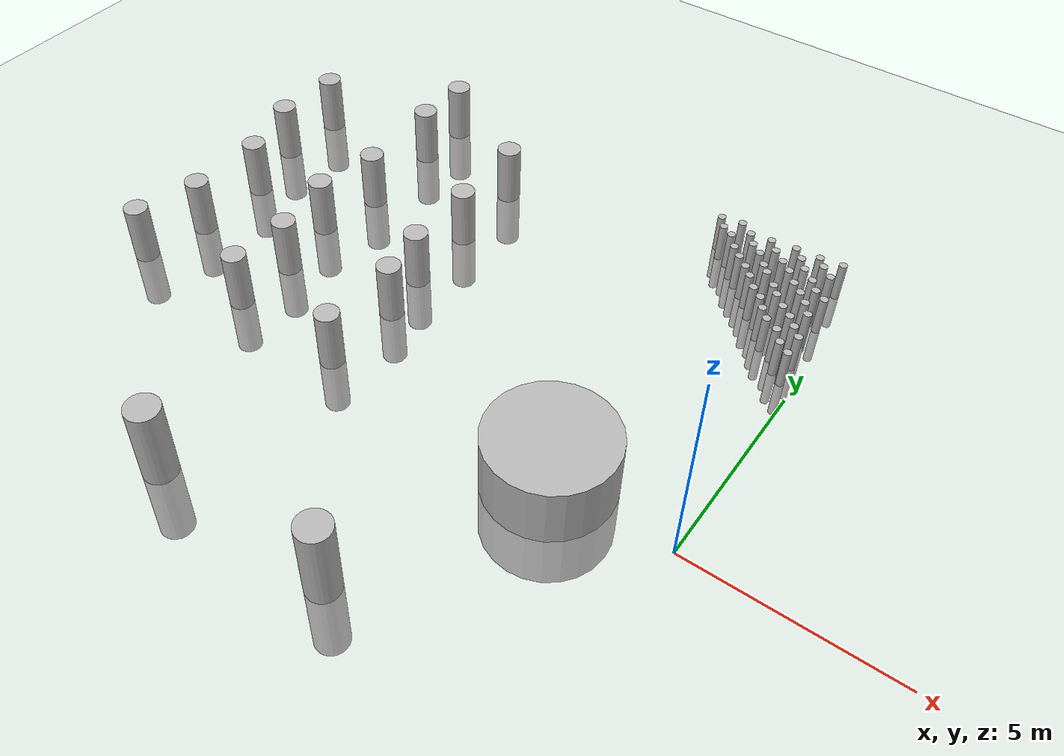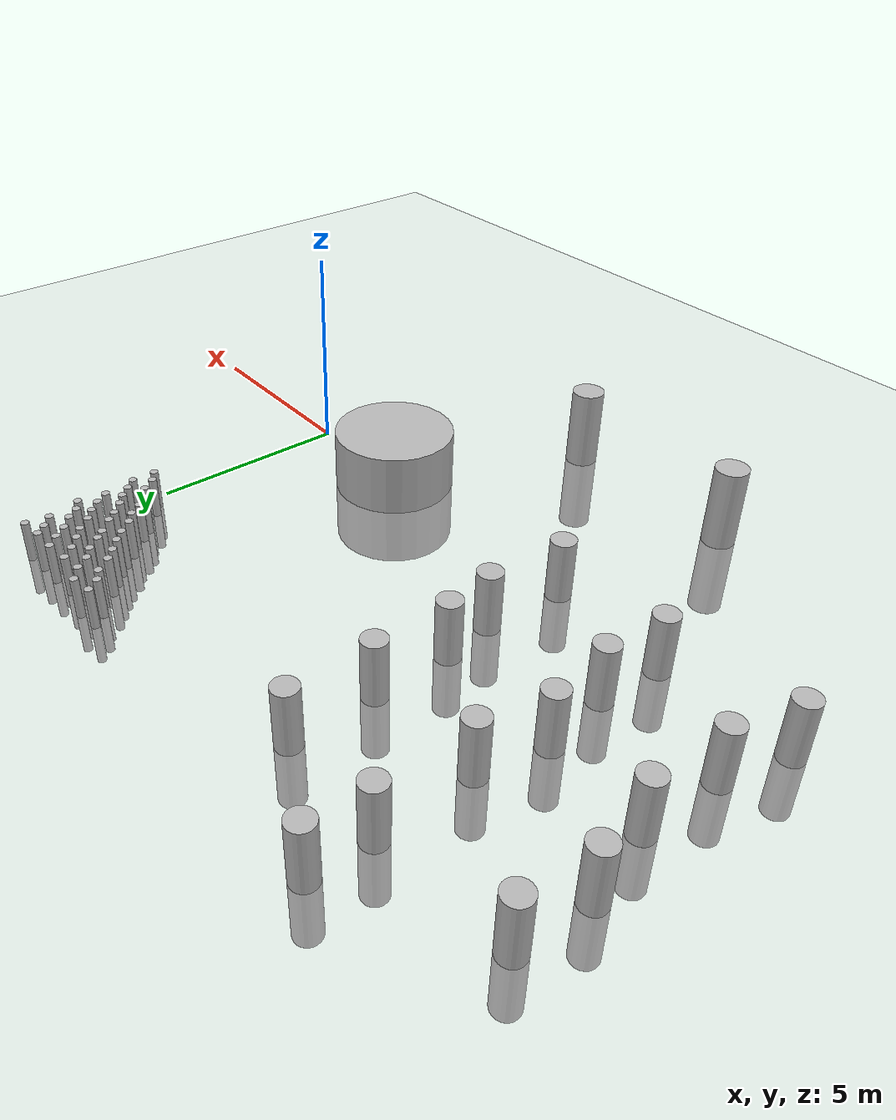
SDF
<sdf version="1.7">
 <world name="farmland_world">
  <model name="ground_plane">
   <static>1</static>
   <link name="link">
    <collision name="collision">
     <geometry><plane><normal>0 0 1</normal><size>40.0 40.0</size></plane></geometry>
     <surface><friction><ode><mu>100</mu><mu2>50</mu2></ode></friction></surface>
    </collision>
    <visual name="visual">
     <cast_shadows>0</cast_shadows>
     <geometry><plane><normal>0 0 1</normal><size>40.0 40.0</size></plane></geometry>
     <material>
      <script><uri>file://media/materials/scripts/gazebo.material</uri><name>Gazebo/Grey</name></script>
     </material>
    </visual>
   </link>
  </model>
  <model name="tree_0_5">
   <static>1</static>
   <link name="link">
    <collision name="collision">
     <geometry><cylinder><radius>0.3</radius><length>3.0</length></cylinder></geometry>
     <surface><friction><ode><mu>100</mu><mu2>50</mu2></ode></friction></surface>
    </collision>
    <visual name="visual">
     <geometry><cylinder><radius>0.3</radius><length>3.0</length></cylinder></geometry>
    </visual>
   </link>
   <pose>-15.098781797502422 6.998545656915446 0 0 0 0</pose>
  </model>
  <model name="tree_0_6">
   <static>1</static>
   <link name="link">
    <collision name="collision">
     <geometry><cylinder><radius>0.3</radius><length>3.0</length></cylinder></geometry>
     <surface><friction><ode><mu>100</mu><mu2>50</mu2></ode></friction></surface>
    </collision>
    <visual name="visual">
     <geometry><cylinder><radius>0.3</radius><length>3.0</length></cylinder></geometry>
    </visual>
   </link>
   <pose>-15.219759444484739 5.294043536451725 0 0 0 0</pose>
  </model>
  <model name="tree_0_7">
   <static>1</static>
   <link name="link">
    <collision name="collision">
     <geometry><cylinder><radius>0.3</radius><length>3.0</length></cylinder></geometry>
     <surface><friction><ode><mu>100</mu><mu2>50</mu2></ode></friction></surface>
    </collision>
    <visual name="visual">
     <geometry><cylinder><radius>0.3</radius><length>3.0</length></cylinder></geometry>
    </visual>
   </link>
   <pose>-14.733545784522109 3.598117998389355 0 0 0 0</pose>
  </model>
  <model name="tree_0_8">
   <static>1</static>
   <link name="link">
    <collision name="collision">
     <geometry><cylinder><radius>0.3</radius><length>3.0</length></cylinder></geometry>
     <surface><friction><ode><mu>100</mu><mu2>50</mu2></ode></friction></surface>
    </collision>
    <visual name="visual">
     <geometry><cylinder><radius>0.3</radius><length>3.0</length></cylinder></geometry>
    </visual>
   </link>
   <pose>-14.776917883909997 1.594553188719145 0 0 0 0</pose>
  </model>
  <model name="tree_0_9">
   <static>1</static>
   <link name="link">
    <collision name="collision">
     <geometry><cylinder><radius>0.3</radius><length>3.0</length></cylinder></geometry>
     <surface><friction><ode><mu>100</mu><mu2>50</mu2></ode></friction></surface>
    </collision>
    <visual name="visual">
     <geometry><cylinder><radius>0.3</radius><length>3.0</length></cylinder></geometry>
    </visual>
   </link>
   <pose>-15.20824132696946 -0.01747100562715229 0 0 0 0</pose>
  </model>
  <model name="tree_0_14">
   <static>1</static>
   <link name="link">
    <collision name="collision">
     <geometry><cylinder><radius>0.3</radius><length>3.0</length></cylinder></geometry>
     <surface><friction><ode><mu>100</mu><mu2>50</mu2></ode></friction></surface>
    </collision>
    <visual name="visual">
     <geometry><cylinder><radius>0.3</radius><length>3.0</length></cylinder></geometry>
    </visual>
   </link>
   <pose>-11.962250807036407 8.816510113504643 0 0 0 0</pose>
  </model>
  <model name="tree_0_15">
   <static>1</static>
   <link name="link">
    <collision name="collision">
     <geometry><cylinder><radius>0.3</radius><length>3.0</length></cylinder></geometry>
     <surface><friction><ode><mu>100</mu><mu2>50</mu2></ode></friction></surface>
    </collision>
    <visual name="visual">
     <geometry><cylinder><radius>0.3</radius><length>3.0</length></cylinder></geometry>
    </visual>
   </link>
   <pose>-12.01371350976454 7.388152698581483 0 0 0 0</pose>
  </model>
  <model name="tree_0_16">
   <static>1</static>
   <link name="link">
    <collision name="collision">
     <geometry><cylinder><radius>0.3</radius><length>3.0</length></cylinder></geometry>
     <surface><friction><ode><mu>100</mu><mu2>50</mu2></ode></friction></surface>
    </collision>
    <visual name="visual">
     <geometry><cylinder><radius>0.3</radius><length>3.0</length></cylinder></geometry>
    </visual>
   </link>
   <pose>-11.930365167949695 5.042977807746157 0 0 0 0</pose>
  </model>
  <model name="tree_0_17">
   <static>1</static>
   <link name="link">
    <collision name="collision">
     <geometry><cylinder><radius>0.3</radius><length>3.0</length></cylinder></geometry>
     <surface><friction><ode><mu>100</mu><mu2>50</mu2></ode></friction></surface>
    </collision>
    <visual name="visual">
     <geometry><cylinder><radius>0.3</radius><length>3.0</length></cylinder></geometry>
    </visual>
   </link>
   <pose>-12.270969702473527 3.4207295712960155 0 0 0 0</pose>
  </model>
  <model name="tree_0_18">
   <static>1</static>
   <link name="link">
    <collision name="collision">
     <geometry><cylinder><radius>0.3</radius><length>3.0</length></cylinder></geometry>
     <surface><friction><ode><mu>100</mu><mu2>50</mu2></ode></friction></surface>
    </collision>
    <visual name="visual">
     <geometry><cylinder><radius>0.3</radius><length>3.0</length></cylinder></geometry>
    </visual>
   </link>
   <pose>-11.960181825543396 1.7453268640379522 0 0 0 0</pose>
  </model>
  <model name="tree_0_19">
   <static>1</static>
   <link name="link">
    <collision name="collision">
     <geometry><cylinder><radius>0.3</radius><length>3.0</length></cylinder></geometry>
     <surface><friction><ode><mu>100</mu><mu2>50</mu2></ode></friction></surface>
    </collision>
    <visual name="visual">
     <geometry><cylinder><radius>0.3</radius><length>3.0</length></cylinder></geometry>
    </visual>
   </link>
   <pose>-12.06162498726729 0.15721724448994134 0 0 0 0</pose>
  </model>
  <model name="tree_0_25">
   <static>1</static>
   <link name="link">
    <collision name="collision">
     <geometry><cylinder><radius>0.3</radius><length>3.0</length></cylinder></geometry>
     <surface><friction><ode><mu>100</mu><mu2>50</mu2></ode></friction></surface>
    </collision>
    <visual name="visual">
     <geometry><cylinder><radius>0.3</radius><length>3.0</length></cylinder></geometry>
    </visual>
   </link>
   <pose>-9.207437022644298 7.32094262421926 0 0 0 0</pose>
  </model>
  <model name="tree_0_26">
   <static>1</static>
   <link name="link">
    <collision name="collision">
     <geometry><cylinder><radius>0.3</radius><length>3.0</length></cylinder></geometry>
     <surface><friction><ode><mu>100</mu><mu2>50</mu2></ode></friction></surface>
    </collision>
    <visual name="visual">
     <geometry><cylinder><radius>0.3</radius><length>3.0</length></cylinder></geometry>
    </visual>
   </link>
   <pose>-9.137057454465426 5.2215842788103615 0 0 0 0</pose>
  </model>
  <model name="tree_0_27">
   <static>1</static>
   <link name="link">
    <collision name="collision">
     <geometry><cylinder><radius>0.3</radius><length>3.0</length></cylinder></geometry>
     <surface><friction><ode><mu>100</mu><mu2>50</mu2></ode></friction></surface>
    </collision>
    <visual name="visual">
     <geometry><cylinder><radius>0.3</radius><length>3.0</length></cylinder></geometry>
    </visual>
   </link>
   <pose>-9.101786406746458 3.2916410255700908 0 0 0 0</pose>
  </model>
  <model name="tree_0_28">
   <static>1</static>
   <link name="link">
    <collision name="collision">
     <geometry><cylinder><radius>0.3</radius><length>3.0</length></cylinder></geometry>
     <surface><friction><ode><mu>100</mu><mu2>50</mu2></ode></friction></surface>
    </collision>
    <visual name="visual">
     <geometry><cylinder><radius>0.3</radius><length>3.0</length></cylinder></geometry>
    </visual>
   </link>
   <pose>-8.885857975989145 2.0078663709371467 0 0 0 0</pose>
  </model>
  <model name="tree_0_29">
   <static>1</static>
   <link name="link">
    <collision name="collision">
     <geometry><cylinder><radius>0.3</radius><length>3.0</length></cylinder></geometry>
     <surface><friction><ode><mu>100</mu><mu2>50</mu2></ode></friction></surface>
    </collision>
    <visual name="visual">
     <geometry><cylinder><radius>0.3</radius><length>3.0</length></cylinder></geometry>
    </visual>
   </link>
   <pose>-8.997880628791322 -0.02085265697098013 0 0 0 0</pose>
  </model>
  <model name="tree_1_9">
   <static>1</static>
   <link name="link">
    <collision name="collision">
     <geometry><cylinder><radius>0.4</radius><length>4.0</length></cylinder></geometry>
     <surface><friction><ode><mu>100</mu><mu2>50</mu2></ode></friction></surface>
    </collision>
    <visual name="visual">
     <geometry><cylinder><radius>0.4</radius><length>4.0</length></cylinder></geometry>
    </visual>
   </link>
   <pose>-5.135497637638166 -4.682200219394235 0 0 0 1.5707963267948966</pose>
  </model>
  <model name="tree_1_10">
   <static>1</static>
   <link name="link">
    <collision name="collision">
     <geometry><cylinder><radius>0.4</radius><length>4.0</length></cylinder></geometry>
     <surface><friction><ode><mu>100</mu><mu2>50</mu2></ode></friction></surface>
    </collision>
    <visual name="visual">
     <geometry><cylinder><radius>0.4</radius><length>4.0</length></cylinder></geometry>
    </visual>
   </link>
   <pose>-9.802835628621317 -4.581949401209085 0 0 0 1.5707963267948966</pose>
  </model>
  <model name="tree_2_21">
   <static>1</static>
   <link name="link">
    <collision name="collision">
     <geometry><cylinder><radius>0.1</radius><length>2.0</length></cylinder></geometry>
     <surface><friction><ode><mu>100</mu><mu2>50</mu2></ode></friction></surface>
    </collision>
    <visual name="visual">
     <geometry><cylinder><radius>0.1</radius><length>2.0</length></cylinder></geometry>
    </visual>
   </link>
   <pose>-0.3380930768440633 5.413363845217107 0 0 0 0</pose>
  </model>
  <model name="tree_2_22">
   <static>1</static>
   <link name="link">
    <collision name="collision">
     <geometry><cylinder><radius>0.1</radius><length>2.0</length></cylinder></geometry>
     <surface><friction><ode><mu>100</mu><mu2>50</mu2></ode></friction></surface>
    </collision>
    <visual name="visual">
     <geometry><cylinder><radius>0.1</radius><length>2.0</length></cylinder></geometry>
    </visual>
   </link>
   <pose>-0.6308501948283547 5.613641408759859 0 0 0 0</pose>
  </model>
  <model name="tree_2_23">
   <static>1</static>
   <link name="link">
    <collision name="collision">
     <geometry><cylinder><radius>0.1</radius><length>2.0</length></cylinder></geometry>
     <surface><friction><ode><mu>100</mu><mu2>50</mu2></ode></friction></surface>
    </collision>
    <visual name="visual">
     <geometry><cylinder><radius>0.1</radius><length>2.0</length></cylinder></geometry>
    </visual>
   </link>
   <pose>-0.8606125800667233 5.940997844809474 0 0 0 0</pose>
  </model>
  <model name="tree_2_24">
   <static>1</static>
   <link name="link">
    <collision name="collision">
     <geometry><cylinder><radius>0.1</radius><length>2.0</length></cylinder></geometry>
     <surface><friction><ode><mu>100</mu><mu2>50</mu2></ode></friction></surface>
    </collision>
    <visual name="visual">
     <geometry><cylinder><radius>0.1</radius><length>2.0</length></cylinder></geometry>
    </visual>
   </link>
   <pose>-1.1990766277143885 6.117519542541731 0 0 0 0</pose>
  </model>
  <model name="tree_2_25">
   <static>1</static>
   <link name="link">
    <collision name="collision">
     <geometry><cylinder><radius>0.1</radius><length>2.0</length></cylinder></geometry>
     <surface><friction><ode><mu>100</mu><mu2>50</mu2></ode></friction></surface>
    </collision>
    <visual name="visual">
     <geometry><cylinder><radius>0.1</radius><length>2.0</length></cylinder></geometry>
    </visual>
   </link>
   <pose>-1.4319952802808769 6.373526858822664 0 0 0 0</pose>
  </model>
  <model name="tree_2_26">
   <static>1</static>
   <link name="link">
    <collision name="collision">
     <geometry><cylinder><radius>0.1</radius><length>2.0</length></cylinder></geometry>
     <surface><friction><ode><mu>100</mu><mu2>50</mu2></ode></friction></surface>
    </collision>
    <visual name="visual">
     <geometry><cylinder><radius>0.1</radius><length>2.0</length></cylinder></geometry>
    </visual>
   </link>
   <pose>-1.6357539070695113 6.6738122246795415 0 0 0 0</pose>
  </model>
  <model name="tree_2_27">
   <static>1</static>
   <link name="link">
    <collision name="collision">
     <geometry><cylinder><radius>0.1</radius><length>2.0</length></cylinder></geometry>
     <surface><friction><ode><mu>100</mu><mu2>50</mu2></ode></friction></surface>
    </collision>
    <visual name="visual">
     <geometry><cylinder><radius>0.1</radius><length>2.0</length></cylinder></geometry>
    </visual>
   </link>
   <pose>-1.9115493747707457 6.877505857578395 0 0 0 0</pose>
  </model>
  <model name="tree_2_28">
   <static>1</static>
   <link name="link">
    <collision name="collision">
     <geometry><cylinder><radius>0.1</radius><length>2.0</length></cylinder></geometry>
     <surface><friction><ode><mu>100</mu><mu2>50</mu2></ode></friction></surface>
    </collision>
    <visual name="visual">
     <geometry><cylinder><radius>0.1</radius><length>2.0</length></cylinder></geometry>
    </visual>
   </link>
   <pose>-2.16747960339168 7.194308886205107 0 0 0 0</pose>
  </model>
  <model name="tree_2_29">
   <static>1</static>
   <link name="link">
    <collision name="collision">
     <geometry><cylinder><radius>0.1</radius><length>2.0</length></cylinder></geometry>
     <surface><friction><ode><mu>100</mu><mu2>50</mu2></ode></friction></surface>
    </collision>
    <visual name="visual">
     <geometry><cylinder><radius>0.1</radius><length>2.0</length></cylinder></geometry>
    </visual>
   </link>
   <pose>-2.401397207681057 7.429341261368056 0 0 0 0</pose>
  </model>
  <model name="tree_2_30">
   <static>1</static>
   <link name="link">
    <collision name="collision">
     <geometry><cylinder><radius>0.1</radius><length>2.0</length></cylinder></geometry>
     <surface><friction><ode><mu>100</mu><mu2>50</mu2></ode></friction></surface>
    </collision>
    <visual name="visual">
     <geometry><cylinder><radius>0.1</radius><length>2.0</length></cylinder></geometry>
    </visual>
   </link>
   <pose>-2.681686270731107 7.6684556228825125 0 0 0 0</pose>
  </model>
  <model name="tree_2_31">
   <static>1</static>
   <link name="link">
    <collision name="collision">
     <geometry><cylinder><radius>0.1</radius><length>2.0</length></cylinder></geometry>
     <surface><friction><ode><mu>100</mu><mu2>50</mu2></ode></friction></surface>
    </collision>
    <visual name="visual">
     <geometry><cylinder><radius>0.1</radius><length>2.0</length></cylinder></geometry>
    </visual>
   </link>
   <pose>-2.9390069384897344 7.900311566085868 0 0 0 0</pose>
  </model>
  <model name="tree_2_32">
   <static>1</static>
   <link name="link">
    <collision name="collision">
     <geometry><cylinder><radius>0.1</radius><length>2.0</length></cylinder></geometry>
     <surface><friction><ode><mu>100</mu><mu2>50</mu2></ode></friction></surface>
    </collision>
    <visual name="visual">
     <geometry><cylinder><radius>0.1</radius><length>2.0</length></cylinder></geometry>
    </visual>
   </link>
   <pose>-3.2029138018662326 8.25327488530289 0 0 0 0</pose>
  </model>
  <model name="tree_2_33">
   <static>1</static>
   <link name="link">
    <collision name="collision">
     <geometry><cylinder><radius>0.1</radius><length>2.0</length></cylinder></geometry>
     <surface><friction><ode><mu>100</mu><mu2>50</mu2></ode></friction></surface>
    </collision>
    <visual name="visual">
     <geometry><cylinder><radius>0.1</radius><length>2.0</length></cylinder></geometry>
    </visual>
   </link>
   <pose>-3.4969850516267558 8.420819120683626 0 0 0 0</pose>
  </model>
  <model name="tree_2_34">
   <static>1</static>
   <link name="link">
    <collision name="collision">
     <geometry><cylinder><radius>0.1</radius><length>2.0</length></cylinder></geometry>
     <surface><friction><ode><mu>100</mu><mu2>50</mu2></ode></friction></surface>
    </collision>
    <visual name="visual">
     <geometry><cylinder><radius>0.1</radius><length>2.0</length></cylinder></geometry>
    </visual>
   </link>
   <pose>-3.705072923717054 8.718561729445666 0 0 0 0</pose>
  </model>
  <model name="tree_2_65">
   <static>1</static>
   <link name="link">
    <collision name="collision">
     <geometry><cylinder><radius>0.1</radius><length>2.0</length></cylinder></geometry>
     <surface><friction><ode><mu>100</mu><mu2>50</mu2></ode></friction></surface>
    </collision>
    <visual name="visual">
     <geometry><cylinder><radius>0.1</radius><length>2.0</length></cylinder></geometry>
    </visual>
   </link>
   <pose>-0.4034332831278257 7.457722940546857 0 0 0 0</pose>
  </model>
  <model name="tree_2_66">
   <static>1</static>
   <link name="link">
    <collision name="collision">
     <geometry><cylinder><radius>0.1</radius><length>2.0</length></cylinder></geometry>
     <surface><friction><ode><mu>100</mu><mu2>50</mu2></ode></friction></surface>
    </collision>
    <visual name="visual">
     <geometry><cylinder><radius>0.1</radius><length>2.0</length></cylinder></geometry>
    </visual>
   </link>
   <pose>-0.6880758908677799 7.626650763925618 0 0 0 0</pose>
  </model>
  <model name="tree_2_67">
   <static>1</static>
   <link name="link">
    <collision name="collision">
     <geometry><cylinder><radius>0.1</radius><length>2.0</length></cylinder></geometry>
     <surface><friction><ode><mu>100</mu><mu2>50</mu2></ode></friction></surface>
    </collision>
    <visual name="visual">
     <geometry><cylinder><radius>0.1</radius><length>2.0</length></cylinder></geometry>
    </visual>
   </link>
   <pose>-0.9008226973823115 7.901959352281067 0 0 0 0</pose>
  </model>
  <model name="tree_2_68">
   <static>1</static>
   <link name="link">
    <collision name="collision">
     <geometry><cylinder><radius>0.1</radius><length>2.0</length></cylinder></geometry>
     <surface><friction><ode><mu>100</mu><mu2>50</mu2></ode></friction></surface>
    </collision>
    <visual name="visual">
     <geometry><cylinder><radius>0.1</radius><length>2.0</length></cylinder></geometry>
    </visual>
   </link>
   <pose>-1.2176097372176249 8.162854197464215 0 0 0 0</pose>
  </model>
  <model name="tree_2_69">
   <static>1</static>
   <link name="link">
    <collision name="collision">
     <geometry><cylinder><radius>0.1</radius><length>2.0</length></cylinder></geometry>
     <surface><friction><ode><mu>100</mu><mu2>50</mu2></ode></friction></surface>
    </collision>
    <visual name="visual">
     <geometry><cylinder><radius>0.1</radius><length>2.0</length></cylinder></geometry>
    </visual>
   </link>
   <pose>-1.4364615645850844 8.456999814794168 0 0 0 0</pose>
  </model>
  <model name="tree_2_70">
   <static>1</static>
   <link name="link">
    <collision name="collision">
     <geometry><cylinder><radius>0.1</radius><length>2.0</length></cylinder></geometry>
     <surface><friction><ode><mu>100</mu><mu2>50</mu2></ode></friction></surface>
    </collision>
    <visual name="visual">
     <geometry><cylinder><radius>0.1</radius><length>2.0</length></cylinder></geometry>
    </visual>
   </link>
   <pose>-1.6929391517453054 8.719845676866694 0 0 0 0</pose>
  </model>
  <model name="tree_2_262">
   <static>1</static>
   <link name="link">
    <collision name="collision">
     <geometry><cylinder><radius>0.1</radius><length>2.0</length></cylinder></geometry>
     <surface><friction><ode><mu>100</mu><mu2>50</mu2></ode></friction></surface>
    </collision>
    <visual name="visual">
     <geometry><cylinder><radius>0.1</radius><length>2.0</length></cylinder></geometry>
    </visual>
   </link>
   <pose>-0.3540876097628173 6.000607170319307 0 0 0 0</pose>
  </model>
  <model name="tree_2_263">
   <static>1</static>
   <link name="link">
    <collision name="collision">
     <geometry><cylinder><radius>0.1</radius><length>2.0</length></cylinder></geometry>
     <surface><friction><ode><mu>100</mu><mu2>50</mu2></ode></friction></surface>
    </collision>
    <visual name="visual">
     <geometry><cylinder><radius>0.1</radius><length>2.0</length></cylinder></geometry>
    </visual>
   </link>
   <pose>-0.582678577754594 6.250059491655997 0 0 0 0</pose>
  </model>
  <model name="tree_2_264">
   <static>1</static>
   <link name="link">
    <collision name="collision">
     <geometry><cylinder><radius>0.1</radius><length>2.0</length></cylinder></geometry>
     <surface><friction><ode><mu>100</mu><mu2>50</mu2></ode></friction></surface>
    </collision>
    <visual name="visual">
     <geometry><cylinder><radius>0.1</radius><length>2.0</length></cylinder></geometry>
    </visual>
   </link>
   <pose>-0.8074927238751258 6.502699005313393 0 0 0 0</pose>
  </model>
  <model name="tree_2_265">
   <static>1</static>
   <link name="link">
    <collision name="collision">
     <geometry><cylinder><radius>0.1</radius><length>2.0</length></cylinder></geometry>
     <surface><friction><ode><mu>100</mu><mu2>50</mu2></ode></friction></surface>
    </collision>
    <visual name="visual">
     <geometry><cylinder><radius>0.1</radius><length>2.0</length></cylinder></geometry>
    </visual>
   </link>
   <pose>-1.0792225168632963 6.703704157908853 0 0 0 0</pose>
  </model>
  <model name="tree_2_266">
   <static>1</static>
   <link name="link">
    <collision name="collision">
     <geometry><cylinder><radius>0.1</radius><length>2.0</length></cylinder></geometry>
     <surface><friction><ode><mu>100</mu><mu2>50</mu2></ode></friction></surface>
    </collision>
    <visual name="visual">
     <geometry><cylinder><radius>0.1</radius><length>2.0</length></cylinder></geometry>
    </visual>
   </link>
   <pose>-1.3680659460460571 6.985501055936378 0 0 0 0</pose>
  </model>
  <model name="tree_2_267">
   <static>1</static>
   <link name="link">
    <collision name="collision">
     <geometry><cylinder><radius>0.1</radius><length>2.0</length></cylinder></geometry>
     <surface><friction><ode><mu>100</mu><mu2>50</mu2></ode></friction></surface>
    </collision>
    <visual name="visual">
     <geometry><cylinder><radius>0.1</radius><length>2.0</length></cylinder></geometry>
    </visual>
   </link>
   <pose>-1.5634563626492135 7.215378041733001 0 0 0 0</pose>
  </model>
  <model name="tree_2_268">
   <static>1</static>
   <link name="link">
    <collision name="collision">
     <geometry><cylinder><radius>0.1</radius><length>2.0</length></cylinder></geometry>
     <surface><friction><ode><mu>100</mu><mu2>50</mu2></ode></friction></surface>
    </collision>
    <visual name="visual">
     <geometry><cylinder><radius>0.1</radius><length>2.0</length></cylinder></geometry>
    </visual>
   </link>
   <pose>-1.8952502208786681 7.544414949862732 0 0 0 0</pose>
  </model>
  <model name="tree_2_269">
   <static>1</static>
   <link name="link">
    <collision name="collision">
     <geometry><cylinder><radius>0.1</radius><length>2.0</length></cylinder></geometry>
     <surface><friction><ode><mu>100</mu><mu2>50</mu2></ode></friction></surface>
    </collision>
    <visual name="visual">
     <geometry><cylinder><radius>0.1</radius><length>2.0</length></cylinder></geometry>
    </visual>
   </link>
   <pose>-2.0702722834789102 7.7339407434945695 0 0 0 0</pose>
  </model>
  <model name="tree_2_270">
   <static>1</static>
   <link name="link">
    <collision name="collision">
     <geometry><cylinder><radius>0.1</radius><length>2.0</length></cylinder></geometry>
     <surface><friction><ode><mu>100</mu><mu2>50</mu2></ode></friction></surface>
    </collision>
    <visual name="visual">
     <geometry><cylinder><radius>0.1</radius><length>2.0</length></cylinder></geometry>
    </visual>
   </link>
   <pose>-2.332072769580689 8.050993955666309 0 0 0 0</pose>
  </model>
  <model name="tree_2_271">
   <static>1</static>
   <link name="link">
    <collision name="collision">
     <geometry><cylinder><radius>0.1</radius><length>2.0</length></cylinder></geometry>
     <surface><friction><ode><mu>100</mu><mu2>50</mu2></ode></friction></surface>
    </collision>
    <visual name="visual">
     <geometry><cylinder><radius>0.1</radius><length>2.0</length></cylinder></geometry>
    </visual>
   </link>
   <pose>-2.6178414408598085 8.257863083867091 0 0 0 0</pose>
  </model>
  <model name="tree_2_272">
   <static>1</static>
   <link name="link">
    <collision name="collision">
     <geometry><cylinder><radius>0.1</radius><length>2.0</length></cylinder></geometry>
     <surface><friction><ode><mu>100</mu><mu2>50</mu2></ode></friction></surface>
    </collision>
    <visual name="visual">
     <geometry><cylinder><radius>0.1</radius><length>2.0</length></cylinder></geometry>
    </visual>
   </link>
   <pose>-2.8300208009116266 8.564715462363427 0 0 0 0</pose>
  </model>
  <model name="tree_2_273">
   <static>1</static>
   <link name="link">
    <collision name="collision">
     <geometry><cylinder><radius>0.1</radius><length>2.0</length></cylinder></geometry>
     <surface><friction><ode><mu>100</mu><mu2>50</mu2></ode></friction></surface>
    </collision>
    <visual name="visual">
     <geometry><cylinder><radius>0.1</radius><length>2.0</length></cylinder></geometry>
    </visual>
   </link>
   <pose>-3.179990827298191 8.80808720733399 0 0 0 0</pose>
  </model>
  <model name="tree_2_304">
   <static>1</static>
   <link name="link">
    <collision name="collision">
     <geometry><cylinder><radius>0.1</radius><length>2.0</length></cylinder></geometry>
     <surface><friction><ode><mu>100</mu><mu2>50</mu2></ode></friction></surface>
    </collision>
    <visual name="visual">
     <geometry><cylinder><radius>0.1</radius><length>2.0</length></cylinder></geometry>
    </visual>
   </link>
   <pose>-0.5019286721721606 6.789084350449344 0 0 0 0</pose>
  </model>
  <model name="tree_2_305">
   <static>1</static>
   <link name="link">
    <collision name="collision">
     <geometry><cylinder><radius>0.1</radius><length>2.0</length></cylinder></geometry>
     <surface><friction><ode><mu>100</mu><mu2>50</mu2></ode></friction></surface>
    </collision>
    <visual name="visual">
     <geometry><cylinder><radius>0.1</radius><length>2.0</length></cylinder></geometry>
    </visual>
   </link>
   <pose>-0.708716528444992 7.103533227743999 0 0 0 0</pose>
  </model>
  <model name="tree_2_306">
   <static>1</static>
   <link name="link">
    <collision name="collision">
     <geometry><cylinder><radius>0.1</radius><length>2.0</length></cylinder></geometry>
     <surface><friction><ode><mu>100</mu><mu2>50</mu2></ode></friction></surface>
    </collision>
    <visual name="visual">
     <geometry><cylinder><radius>0.1</radius><length>2.0</length></cylinder></geometry>
    </visual>
   </link>
   <pose>-0.952253284587891 7.359232079692627 0 0 0 0</pose>
  </model>
  <model name="tree_2_307">
   <static>1</static>
   <link name="link">
    <collision name="collision">
     <geometry><cylinder><radius>0.1</radius><length>2.0</length></cylinder></geometry>
     <surface><friction><ode><mu>100</mu><mu2>50</mu2></ode></friction></surface>
    </collision>
    <visual name="visual">
     <geometry><cylinder><radius>0.1</radius><length>2.0</length></cylinder></geometry>
    </visual>
   </link>
   <pose>-1.2153773706096467 7.577131237793353 0 0 0 0</pose>
  </model>
  <model name="tree_2_308">
   <static>1</static>
   <link name="link">
    <collision name="collision">
     <geometry><cylinder><radius>0.1</radius><length>2.0</length></cylinder></geometry>
     <surface><friction><ode><mu>100</mu><mu2>50</mu2></ode></friction></surface>
    </collision>
    <visual name="visual">
     <geometry><cylinder><radius>0.1</radius><length>2.0</length></cylinder></geometry>
    </visual>
   </link>
   <pose>-1.4835426080435643 7.895889834521365 0 0 0 0</pose>
  </model>
  <model name="tree_2_309">
   <static>1</static>
   <link name="link">
    <collision name="collision">
     <geometry><cylinder><radius>0.1</radius><length>2.0</length></cylinder></geometry>
     <surface><friction><ode><mu>100</mu><mu2>50</mu2></ode></friction></surface>
    </collision>
    <visual name="visual">
     <geometry><cylinder><radius>0.1</radius><length>2.0</length></cylinder></geometry>
    </visual>
   </link>
   <pose>-1.7561697293826761 8.104090871975059 0 0 0 0</pose>
  </model>
  <model name="tree_2_310">
   <static>1</static>
   <link name="link">
    <collision name="collision">
     <geometry><cylinder><radius>0.1</radius><length>2.0</length></cylinder></geometry>
     <surface><friction><ode><mu>100</mu><mu2>50</mu2></ode></friction></surface>
    </collision>
    <visual name="visual">
     <geometry><cylinder><radius>0.1</radius><length>2.0</length></cylinder></geometry>
    </visual>
   </link>
   <pose>-2.06007522124396 8.357884477004323 0 0 0 0</pose>
  </model>
  <model name="tree_2_311">
   <static>1</static>
   <link name="link">
    <collision name="collision">
     <geometry><cylinder><radius>0.1</radius><length>2.0</length></cylinder></geometry>
     <surface><friction><ode><mu>100</mu><mu2>50</mu2></ode></friction></surface>
    </collision>
    <visual name="visual">
     <geometry><cylinder><radius>0.1</radius><length>2.0</length></cylinder></geometry>
    </visual>
   </link>
   <pose>-2.308207674651828 8.637453739153804 0 0 0 0</pose>
  </model>
  <model name="tree_2_347">
   <static>1</static>
   <link name="link">
    <collision name="collision">
     <geometry><cylinder><radius>0.1</radius><length>2.0</length></cylinder></geometry>
     <surface><friction><ode><mu>100</mu><mu2>50</mu2></ode></friction></surface>
    </collision>
    <visual name="visual">
     <geometry><cylinder><radius>0.1</radius><length>2.0</length></cylinder></geometry>
    </visual>
   </link>
   <pose>-0.6049503510042509 8.254991779628341 0 0 0 0</pose>
  </model>
  <model name="tree_2_348">
   <static>1</static>
   <link name="link">
    <collision name="collision">
     <geometry><cylinder><radius>0.1</radius><length>2.0</length></cylinder></geometry>
     <surface><friction><ode><mu>100</mu><mu2>50</mu2></ode></friction></surface>
    </collision>
    <visual name="visual">
     <geometry><cylinder><radius>0.1</radius><length>2.0</length></cylinder></geometry>
    </visual>
   </link>
   <pose>-0.8845464773985784 8.5023586587457 0 0 0 0</pose>
  </model>
  <model name="tree_2_349">
   <static>1</static>
   <link name="link">
    <collision name="collision">
     <geometry><cylinder><radius>0.1</radius><length>2.0</length></cylinder></geometry>
     <surface><friction><ode><mu>100</mu><mu2>50</mu2></ode></friction></surface>
    </collision>
    <visual name="visual">
     <geometry><cylinder><radius>0.1</radius><length>2.0</length></cylinder></geometry>
    </visual>
   </link>
   <pose>-1.0861595533412627 8.743093368761194 0 0 0 0</pose>
  </model>
  <model name="tree_2_388">
   <static>1</static>
   <link name="link">
    <collision name="collision">
     <geometry><cylinder><radius>0.1</radius><length>2.0</length></cylinder></geometry>
     <surface><friction><ode><mu>100</mu><mu2>50</mu2></ode></friction></surface>
    </collision>
    <visual name="visual">
     <geometry><cylinder><radius>0.1</radius><length>2.0</length></cylinder></geometry>
    </visual>
   </link>
   <pose>-0.525442833386611 8.812476364656742 0 0 0 0</pose>
  </model>
  <model name="tree_4_0">
   <static>1</static>
   <link name="link">
    <collision name="collision">
     <geometry><cylinder><radius>1.5</radius><length>3.0</length></cylinder></geometry>
     <surface><friction><ode><mu>100</mu><mu2>50</mu2></ode></friction></surface>
    </collision>
    <visual name="visual">
     <geometry><cylinder><radius>1.5</radius><length>3.0</length></cylinder></geometry>
    </visual>
   </link>
   <pose>-3.0 0.0 0 0 0 0</pose>
  </model>
  <model name="tree_4_1">
   <static>1</static>
   <link name="link">
    <collision name="collision">
     <geometry><cylinder><radius>1.5</radius><length>3.0</length></cylinder></geometry>
     <surface><friction><ode><mu>100</mu><mu2>50</mu2></ode></friction></surface>
    </collision>
    <visual name="visual">
     <geometry><cylinder><radius>1.5</radius><length>3.0</length></cylinder></geometry>
    </visual>
   </link>
   <pose>-3.0 0.0 0 0 0 0</pose>
  </model>
  <model name="tree_4_2">
   <static>1</static>
   <link name="link">
    <collision name="collision">
     <geometry><cylinder><radius>1.5</radius><length>3.0</length></cylinder></geometry>
     <surface><friction><ode><mu>100</mu><mu2>50</mu2></ode></friction></surface>
    </collision>
    <visual name="visual">
     <geometry><cylinder><radius>1.5</radius><length>3.0</length></cylinder></geometry>
    </visual>
   </link>
   <pose>-3.0 0.0 0 0 0 0</pose>
  </model>
  <model name="tree_4_3">
   <static>1</static>
   <link name="link">
    <collision name="collision">
     <geometry><cylinder><radius>1.5</radius><length>3.0</length></cylinder></geometry>
     <surface><friction><ode><mu>100</mu><mu2>50</mu2></ode></friction></surface>
    </collision>
    <visual name="visual">
     <geometry><cylinder><radius>1.5</radius><length>3.0</length></cylinder></geometry>
    </visual>
   </link>
   <pose>-3.0 0.0 0 0 0 0</pose>
  </model>
  <model name="tree_4_4">
   <static>1</static>
   <link name="link">
    <collision name="collision">
     <geometry><cylinder><radius>1.5</radius><length>3.0</length></cylinder></geometry>
     <surface><friction><ode><mu>100</mu><mu2>50</mu2></ode></friction></surface>
    </collision>
    <visual name="visual">
     <geometry><cylinder><radius>1.5</radius><length>3.0</length></cylinder></geometry>
    </visual>
   </link>
   <pose>-3.0 0.0 0 0 0 0</pose>
  </model>
  <model name="tree_4_5">
   <static>1</static>
   <link name="link">
    <collision name="collision">
     <geometry><cylinder><radius>1.5</radius><length>3.0</length></cylinder></geometry>
     <surface><friction><ode><mu>100</mu><mu2>50</mu2></ode></friction></surface>
    </collision>
    <visual name="visual">
     <geometry><cylinder><radius>1.5</radius><length>3.0</length></cylinder></geometry>
    </visual>
   </link>
   <pose>-3.0 0.0 0 0 0 0</pose>
  </model>
  <model name="tree_4_6">
   <static>1</static>
   <link name="link">
    <collision name="collision">
     <geometry><cylinder><radius>1.5</radius><length>3.0</length></cylinder></geometry>
     <surface><friction><ode><mu>100</mu><mu2>50</mu2></ode></friction></surface>
    </collision>
    <visual name="visual">
     <geometry><cylinder><radius>1.5</radius><length>3.0</length></cylinder></geometry>
    </visual>
   </link>
   <pose>-3.0 0.0 0 0 0 0</pose>
  </model>
  <model name="tree_4_7">
   <static>1</static>
   <link name="link">
    <collision name="collision">
     <geometry><cylinder><radius>1.5</radius><length>3.0</length></cylinder></geometry>
     <surface><friction><ode><mu>100</mu><mu2>50</mu2></ode></friction></surface>
    </collision>
    <visual name="visual">
     <geometry><cylinder><radius>1.5</radius><length>3.0</length></cylinder></geometry>
    </visual>
   </link>
   <pose>-2.9999999999999996 0.0 0 0 0 0</pose>
  </model>
  <model name="tree_4_8">
   <static>1</static>
   <link name="link">
    <collision name="collision">
     <geometry><cylinder><radius>1.5</radius><length>3.0</length></cylinder></geometry>
     <surface><friction><ode><mu>100</mu><mu2>50</mu2></ode></friction></surface>
    </collision>
    <visual name="visual">
     <geometry><cylinder><radius>1.5</radius><length>3.0</length></cylinder></geometry>
    </visual>
   </link>
   <pose>-3.0 0.0 0 0 0 0</pose>
  </model>
  <model name="tree_4_9">
   <static>1</static>
   <link name="link">
    <collision name="collision">
     <geometry><cylinder><radius>1.5</radius><length>3.0</length></cylinder></geometry>
     <surface><friction><ode><mu>100</mu><mu2>50</mu2></ode></friction></surface>
    </collision>
    <visual name="visual">
     <geometry><cylinder><radius>1.5</radius><length>3.0</length></cylinder></geometry>
    </visual>
   </link>
   <pose>-3.0 0.0 0 0 0 0</pose>
  </model>
  <model name="tree_4_10">
   <static>1</static>
   <link name="link">
    <collision name="collision">
     <geometry><cylinder><radius>1.5</radius><length>3.0</length></cylinder></geometry>
     <surface><friction><ode><mu>100</mu><mu2>50</mu2></ode></friction></surface>
    </collision>
    <visual name="visual">
     <geometry><cylinder><radius>1.5</radius><length>3.0</length></cylinder></geometry>
    </visual>
   </link>
   <pose>-3.0 0.0 0 0 0 0</pose>
  </model>
  <model name="tree_4_11">
   <static>1</static>
   <link name="link">
    <collision name="collision">
     <geometry><cylinder><radius>1.5</radius><length>3.0</length></cylinder></geometry>
     <surface><friction><ode><mu>100</mu><mu2>50</mu2></ode></friction></surface>
    </collision>
    <visual name="visual">
     <geometry><cylinder><radius>1.5</radius><length>3.0</length></cylinder></geometry>
    </visual>
   </link>
   <pose>-3.0 0.0 0 0 0 0</pose>
  </model>
  <model name="tree_4_12">
   <static>1</static>
   <link name="link">
    <collision name="collision">
     <geometry><cylinder><radius>1.5</radius><length>3.0</length></cylinder></geometry>
     <surface><friction><ode><mu>100</mu><mu2>50</mu2></ode></friction></surface>
    </collision>
    <visual name="visual">
     <geometry><cylinder><radius>1.5</radius><length>3.0</length></cylinder></geometry>
    </visual>
   </link>
   <pose>-3.0 0.0 0 0 0 0</pose>
  </model>
  <model name="tree_4_13">
   <static>1</static>
   <link name="link">
    <collision name="collision">
     <geometry><cylinder><radius>1.5</radius><length>3.0</length></cylinder></geometry>
     <surface><friction><ode><mu>100</mu><mu2>50</mu2></ode></friction></surface>
    </collision>
    <visual name="visual">
     <geometry><cylinder><radius>1.5</radius><length>3.0</length></cylinder></geometry>
    </visual>
   </link>
   <pose>-3.0 0.0 0 0 0 0</pose>
  </model>
  <model name="tree_4_14">
   <static>1</static>
   <link name="link">
    <collision name="collision">
     <geometry><cylinder><radius>1.5</radius><length>3.0</length></cylinder></geometry>
     <surface><friction><ode><mu>100</mu><mu2>50</mu2></ode></friction></surface>
    </collision>
    <visual name="visual">
     <geometry><cylinder><radius>1.5</radius><length>3.0</length></cylinder></geometry>
    </visual>
   </link>
   <pose>-3.0 0.0 0 0 0 0</pose>
  </model>
  <model name="tree_4_15">
   <static>1</static>
   <link name="link">
    <collision name="collision">
     <geometry><cylinder><radius>1.5</radius><length>3.0</length></cylinder></geometry>
     <surface><friction><ode><mu>100</mu><mu2>50</mu2></ode></friction></surface>
    </collision>
    <visual name="visual">
     <geometry><cylinder><radius>1.5</radius><length>3.0</length></cylinder></geometry>
    </visual>
   </link>
   <pose>-3.0 0.0 0 0 0 0</pose>
  </model>
  <model name="tree_4_16">
   <static>1</static>
   <link name="link">
    <collision name="collision">
     <geometry><cylinder><radius>1.5</radius><length>3.0</length></cylinder></geometry>
     <surface><friction><ode><mu>100</mu><mu2>50</mu2></ode></friction></surface>
    </collision>
    <visual name="visual">
     <geometry><cylinder><radius>1.5</radius><length>3.0</length></cylinder></geometry>
    </visual>
   </link>
   <pose>-3.0 0.0 0 0 0 0</pose>
  </model>
  <model name="tree_4_17">
   <static>1</static>
   <link name="link">
    <collision name="collision">
     <geometry><cylinder><radius>1.5</radius><length>3.0</length></cylinder></geometry>
     <surface><friction><ode><mu>100</mu><mu2>50</mu2></ode></friction></surface>
    </collision>
    <visual name="visual">
     <geometry><cylinder><radius>1.5</radius><length>3.0</length></cylinder></geometry>
    </visual>
   </link>
   <pose>-3.0 0.0 0 0 0 0</pose>
  </model>
  <model name="tree_4_18">
   <static>1</static>
   <link name="link">
    <collision name="collision">
     <geometry><cylinder><radius>1.5</radius><length>3.0</length></cylinder></geometry>
     <surface><friction><ode><mu>100</mu><mu2>50</mu2></ode></friction></surface>
    </collision>
    <visual name="visual">
     <geometry><cylinder><radius>1.5</radius><length>3.0</length></cylinder></geometry>
    </visual>
   </link>
   <pose>-3.0 0.0 0 0 0 0</pose>
  </model>
  <model name="tree_4_19">
   <static>1</static>
   <link name="link">
    <collision name="collision">
     <geometry><cylinder><radius>1.5</radius><length>3.0</length></cylinder></geometry>
     <surface><friction><ode><mu>100</mu><mu2>50</mu2></ode></friction></surface>
    </collision>
    <visual name="visual">
     <geometry><cylinder><radius>1.5</radius><length>3.0</length></cylinder></geometry>
    </visual>
   </link>
   <pose>-3.0 0.0 0 0 0 0</pose>
  </model>
  <model name="tree_4_20">
   <static>1</static>
   <link name="link">
    <collision name="collision">
     <geometry><cylinder><radius>1.5</radius><length>3.0</length></cylinder></geometry>
     <surface><friction><ode><mu>100</mu><mu2>50</mu2></ode></friction></surface>
    </collision>
    <visual name="visual">
     <geometry><cylinder><radius>1.5</radius><length>3.0</length></cylinder></geometry>
    </visual>
   </link>
   <pose>-3.0 0.0 0 0 0 0</pose>
  </model>
  <model name="tree_4_21">
   <static>1</static>
   <link name="link">
    <collision name="collision">
     <geometry><cylinder><radius>1.5</radius><length>3.0</length></cylinder></geometry>
     <surface><friction><ode><mu>100</mu><mu2>50</mu2></ode></friction></surface>
    </collision>
    <visual name="visual">
     <geometry><cylinder><radius>1.5</radius><length>3.0</length></cylinder></geometry>
    </visual>
   </link>
   <pose>-3.0 0.0 0 0 0 0</pose>
  </model>
  <model name="tree_4_22">
   <static>1</static>
   <link name="link">
    <collision name="collision">
     <geometry><cylinder><radius>1.5</radius><length>3.0</length></cylinder></geometry>
     <surface><friction><ode><mu>100</mu><mu2>50</mu2></ode></friction></surface>
    </collision>
    <visual name="visual">
     <geometry><cylinder><radius>1.5</radius><length>3.0</length></cylinder></geometry>
    </visual>
   </link>
   <pose>-3.0 0.0 0 0 0 0</pose>
  </model>
  <model name="tree_4_23">
   <static>1</static>
   <link name="link">
    <collision name="collision">
     <geometry><cylinder><radius>1.5</radius><length>3.0</length></cylinder></geometry>
     <surface><friction><ode><mu>100</mu><mu2>50</mu2></ode></friction></surface>
    </collision>
    <visual name="visual">
     <geometry><cylinder><radius>1.5</radius><length>3.0</length></cylinder></geometry>
    </visual>
   </link>
   <pose>-3.0 0.0 0 0 0 0</pose>
  </model>
  <model name="tree_4_24">
   <static>1</static>
   <link name="link">
    <collision name="collision">
     <geometry><cylinder><radius>1.5</radius><length>3.0</length></cylinder></geometry>
     <surface><friction><ode><mu>100</mu><mu2>50</mu2></ode></friction></surface>
    </collision>
    <visual name="visual">
     <geometry><cylinder><radius>1.5</radius><length>3.0</length></cylinder></geometry>
    </visual>
   </link>
   <pose>-3.0 0.0 0 0 0 0</pose>
  </model>
  <model name="tree_4_25">
   <static>1</static>
   <link name="link">
    <collision name="collision">
     <geometry><cylinder><radius>1.5</radius><length>3.0</length></cylinder></geometry>
     <surface><friction><ode><mu>100</mu><mu2>50</mu2></ode></friction></surface>
    </collision>
    <visual name="visual">
     <geometry><cylinder><radius>1.5</radius><length>3.0</length></cylinder></geometry>
    </visual>
   </link>
   <pose>-3.0 0.0 0 0 0 0</pose>
  </model>
  <model name="tree_4_26">
   <static>1</static>
   <link name="link">
    <collision name="collision">
     <geometry><cylinder><radius>1.5</radius><length>3.0</length></cylinder></geometry>
     <surface><friction><ode><mu>100</mu><mu2>50</mu2></ode></friction></surface>
    </collision>
    <visual name="visual">
     <geometry><cylinder><radius>1.5</radius><length>3.0</length></cylinder></geometry>
    </visual>
   </link>
   <pose>-3.0 0.0 0 0 0 0</pose>
  </model>
  <model name="tree_4_27">
   <static>1</static>
   <link name="link">
    <collision name="collision">
     <geometry><cylinder><radius>1.5</radius><length>3.0</length></cylinder></geometry>
     <surface><friction><ode><mu>100</mu><mu2>50</mu2></ode></friction></surface>
    </collision>
    <visual name="visual">
     <geometry><cylinder><radius>1.5</radius><length>3.0</length></cylinder></geometry>
    </visual>
   </link>
   <pose>-3.0 0.0 0 0 0 0</pose>
  </model>
  <model name="tree_4_28">
   <static>1</static>
   <link name="link">
    <collision name="collision">
     <geometry><cylinder><radius>1.5</radius><length>3.0</length></cylinder></geometry>
     <surface><friction><ode><mu>100</mu><mu2>50</mu2></ode></friction></surface>
    </collision>
    <visual name="visual">
     <geometry><cylinder><radius>1.5</radius><length>3.0</length></cylinder></geometry>
    </visual>
   </link>
   <pose>-3.0 0.0 0 0 0 0</pose>
  </model>
  <model name="tree_4_29">
   <static>1</static>
   <link name="link">
    <collision name="collision">
     <geometry><cylinder><radius>1.5</radius><length>3.0</length></cylinder></geometry>
     <surface><friction><ode><mu>100</mu><mu2>50</mu2></ode></friction></surface>
    </collision>
    <visual name="visual">
     <geometry><cylinder><radius>1.5</radius><length>3.0</length></cylinder></geometry>
    </visual>
   </link>
   <pose>-3.0 0.0 0 0 0 0</pose>
  </model>
 </world>
</sdf>
